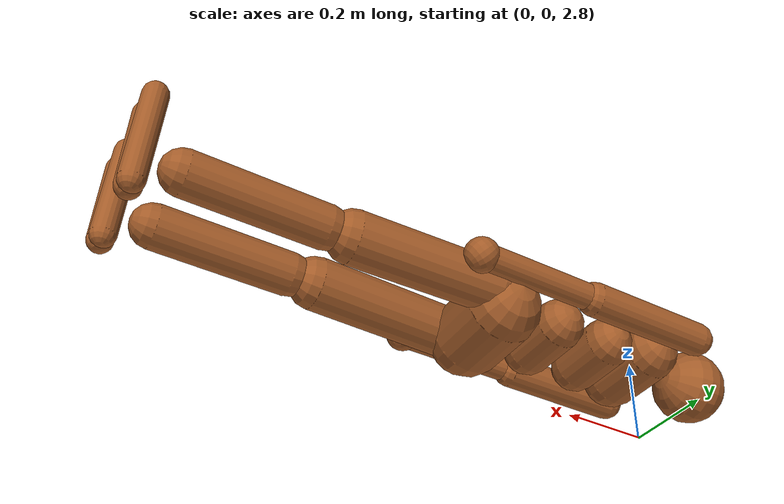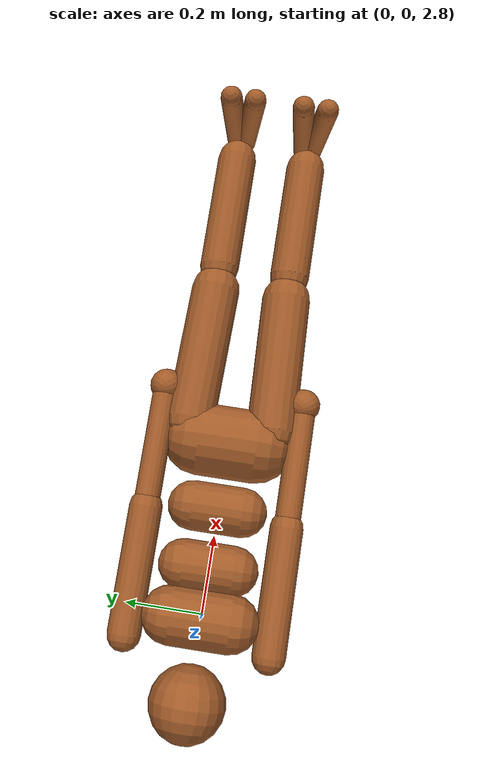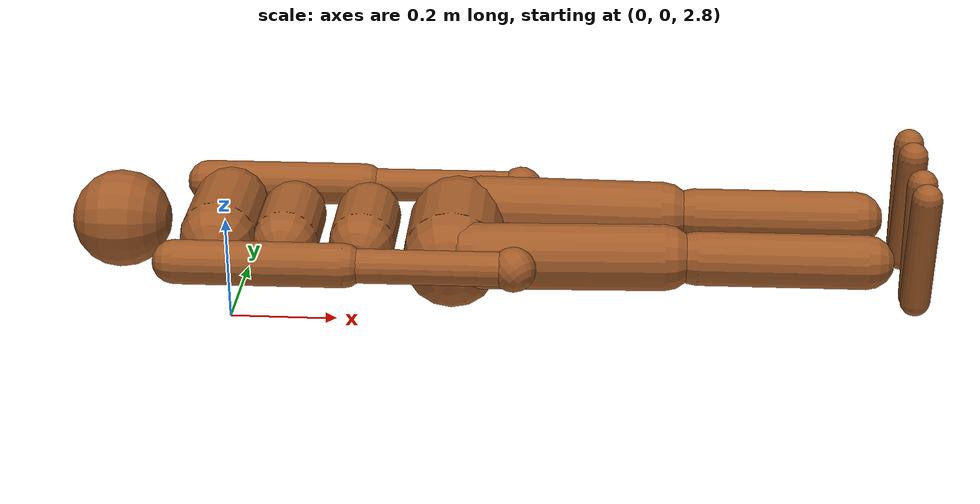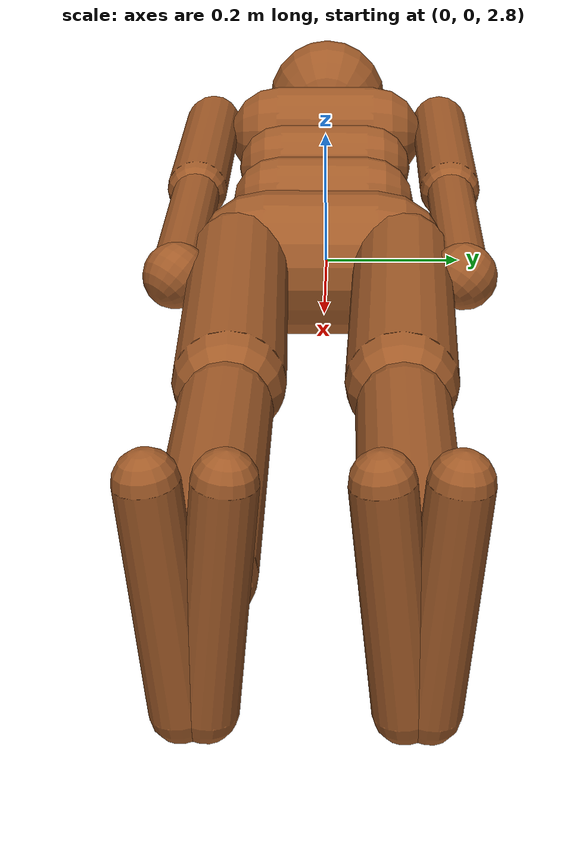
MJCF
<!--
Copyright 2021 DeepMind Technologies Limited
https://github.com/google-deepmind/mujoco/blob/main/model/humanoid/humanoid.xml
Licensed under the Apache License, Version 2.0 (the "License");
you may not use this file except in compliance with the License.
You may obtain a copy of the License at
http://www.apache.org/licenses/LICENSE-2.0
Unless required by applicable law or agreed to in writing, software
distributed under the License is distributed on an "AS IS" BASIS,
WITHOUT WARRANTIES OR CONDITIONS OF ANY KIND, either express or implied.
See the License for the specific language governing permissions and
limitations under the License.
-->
<mujoco model="Humanoid">
  <option
        gravity="0 0 0"
        timestep="0.005"
        integrator="implicitfast"
        density="1000"
        viscosity="0.0013"/>

  <visual>
    <map force="0.1" zfar="30"/>
    <rgba haze="0.15 0.25 0.35 1"/>
    <global offwidth="2560" offheight="1440"/>
  </visual>

  <statistic center="0 0 0.7"/>

  <asset>
    <texture type="skybox" builtin="gradient" rgb1=".3 .5 .7" rgb2="0 0 0" width="32" height="512"/>
    <texture name="body" type="cube" builtin="flat" mark="cross" width="128" height="128" rgb1="0.8 0.6 0.4" rgb2="0.8 0.6 0.4" markrgb="1 1 1"/>
    <material name="body" texture="body" texuniform="true" rgba="0.8 0.6 .4 1"/>
    <texture name="grid" type="2d" builtin="checker" width="512" height="512" rgb1=".1 .2 .3" rgb2=".2 .3 .4"/>
    <material name="grid" texture="grid" texrepeat="1 1" texuniform="true" reflectance=".2"/>
  </asset>

  <default>
    <motor ctrlrange="-1 1" ctrllimited="true"/>
    <joint damping="0.5"/>

    <default class="body">

      <!-- geoms -->
      <geom type="capsule"
        condim="1"
        friction=".01 .01 .01"
        solimp=".9 .99 .003"
        solref=".015 1"
        material="body"
        group="1"
        fluidshape="ellipsoid"
        />
      <default class="thigh">
        <geom size=".06"/>
      </default>
      <default class="shin">
        <geom fromto="0 0 0 0 0 -.3"  size=".049"/>
      </default>
      <default class="foot">
        <geom size=".027"/>
        <default class="foot1">
          <geom fromto="-.07 -.01 0 .14 -.03 0"/>
        </default>
        <default class="foot2">
          <geom fromto="-.07 .01 0 .14  .03 0"/>
        </default>
      </default>
      <default class="arm_upper">
        <geom size=".04"/>
      </default>
      <default class="arm_lower">
        <geom size=".031"/>
      </default>
      <default class="hand">
        <geom type="sphere" size=".04"/>
      </default>

      <!-- joints -->
      <joint type="hinge" damping=".2" stiffness="1" armature=".01" limited="true" solimplimit="0 .99 .01"/>
      <default class="joint_big">
        <joint damping="5" stiffness="10"/>
        <default class="hip_x">
          <joint range="-30 10"/>
        </default>
        <default class="hip_z">
          <joint range="-60 35"/>
        </default>
        <default class="hip_y">
          <joint axis="0 1 0" range="-150 20"/>
        </default>
        <default class="joint_big_stiff">
          <joint stiffness="20"/>
        </default>
      </default>
      <default class="knee">
        <joint pos="0 0 .02" axis="0 -1 0" range="-160 2"/>
      </default>
      <default class="ankle">
        <joint range="-50 50"/>
        <default class="ankle_y">
          <joint pos="0 0 .08" axis="0 1 0" stiffness="6"/>
        </default>
        <default class="ankle_x">
          <joint pos="0 0 .04" stiffness="3"/>
        </default>
      </default>
      <default class="shoulder">
        <joint range="-180 180"/>
      </default>
      <default class="elbow">
        <joint range="-100 50" stiffness="0"/>
      </default>
    </default>
  </default>

  <worldbody>
    <geom name="floor" size="0 0 .05" type="plane" material="grid" condim="3"/>
    <light name="spotlight" mode="targetbodycom" target="torso" diffuse=".8 .8 .8" specular="0.3 0.3 0.3" pos="0 -6 4" cutoff="30"/>
    <light name="top" pos="0 0 2" mode="trackcom"/>
    <geom name="water_surface"
              type="plane"
              size="10 10 0.01"
              pos="0 0 3.0"
              rgba="0 0.5 1 0.3"
              contype="0"
              conaffinity="0"/>
        <!-- Change this line -->
     <body name="torso" pos="0 0 3" quat="0.7071 0 -0.7071 0" childclass="body">

      <camera name="back" pos="-3 0 1" xyaxes="0 -1 0 1 0 2" mode="trackcom"/>
      <camera name="side" pos="0 -3 1" xyaxes="1 0 0 0 1 2" mode="trackcom"/>
      <freejoint name="root"/>
      <geom name="torso" fromto="0 -.07 0 0 .07 0" size=".07"/>
      <geom name="waist_upper" fromto="-.01 -.06 -.12 -.01 .06 -.12" size=".06"/>
      <body name="head" pos="0 0 .19">
        <geom name="head" type="sphere" size=".09"/>
        <camera name="egocentric" pos=".09 0 0" xyaxes="0 -1 0 .1 0 1" fovy="80"/>
      </body>
      <body name="waist_lower" pos="-.01 0 -.26">
        <geom name="waist_lower" fromto="0 -.06 0 0 .06 0" size=".06"/>
        <joint name="abdomen_z" pos="0 0 .065" axis="0 0 1" range="-45 45" class="joint_big_stiff"/>
        <joint name="abdomen_y" pos="0 0 .065" axis="0 1 0" range="-75 30" class="joint_big"/>
        <body name="pelvis" pos="0 0 -.165">
          <joint name="abdomen_x" pos="0 0 .1" axis="1 0 0" range="-35 35" class="joint_big"/>
          <geom name="butt" fromto="-.02 -.07 0 -.02 .07 0" size=".09"/>
          <body name="thigh_right" pos="0 -.1 -.04">
            <joint name="hip_x_right" axis="1 0 0" class="hip_x"/>
            <joint name="hip_z_right" axis="0 0 1" class="hip_z"/>
            <joint name="hip_y_right" class="hip_y"/>
            <geom name="thigh_right" fromto="0 0 0 0 .01 -.34" class="thigh"/>
            <body name="shin_right" pos="0 .01 -.4">
              <joint name="knee_right" class="knee"/>
              <geom name="shin_right" class="shin"/>
              <body name="foot_right" pos="0 0 -.39">
                <joint name="ankle_y_right" class="ankle_y"/>
                <joint name="ankle_x_right" class="ankle_x" axis="1 0 .5"/>
                <geom name="foot1_right" class="foot1"/>
                <geom name="foot2_right" class="foot2"/>
              </body>
            </body>
          </body>
          <body name="thigh_left" pos="0 .1 -.04">
            <joint name="hip_x_left" axis="-1 0 0" class="hip_x"/>
            <joint name="hip_z_left" axis="0 0 -1" class="hip_z"/>
            <joint name="hip_y_left" class="hip_y"/>
            <geom name="thigh_left" fromto="0 0 0 0 -.01 -.34" class="thigh"/>
            <body name="shin_left" pos="0 -.01 -.4">
              <joint name="knee_left" class="knee"/>
              <geom name="shin_left" fromto="0 0 0 0 0 -.3" class="shin"/>
              <body name="foot_left" pos="0 0 -.39">
                <joint name="ankle_y_left" class="ankle_y"/>
                <joint name="ankle_x_left" class="ankle_x" axis="-1 0 -.5"/>
                <geom name="foot1_left" class="foot1"/>
                <geom name="foot2_left" class="foot2"/>
              </body>
            </body>
          </body>
        </body>
      </body>

       <!-- ==================== RIGHT ARM ==================== -->
        <body name="upper_arm_right" pos="0 -.17 .06">
            <!-- Shoulder joint(s) are attached to the *origin* of this body -->
            <joint name="shoulder1_right" axis="0 0 1" class="shoulder"/>
            <joint name="shoulder2_right" axis="0 1 0" class="shoulder"/>
            <joint name="shoulder3_right" axis="1 0 0" class="shoulder"/>

            <!-- Upper‑arm geometry (drawn from the shoulder origin to the elbow) -->
            <geom name="upper_arm_right"
                  fromto="0 0 0 0 0 -0.3"
                  class="arm_upper"/>

            <body name="lower_arm_right" pos="0 0 -0.3">
                <!-- Elbow joint sits at the origin of this body (the elbow centre) -->
                <joint name="elbow_right" axis="0 1 0" class="elbow"/>

                <!-- Lower‑arm geometry (elbow → wrist) -->
                <geom name="lower_arm_right"
                      fromto="0 0 0 0 0 -0.3"
                      class="arm_lower"/>

                <body name="hand_right" pos="0 0 -0.3">
                    <!-- No joint needed for a simple hand; just a visual geom -->
                    <geom name="hand_right"
                          zaxis="1 1 1"
                          class="hand"/>
                </body>
            </body>
        </body>

        <!-- ==================== LEFT ARM ==================== -->
        <body name="upper_arm_left" pos="0 .17 .06">
            <joint name="shoulder1_left" axis="0 0 1" class="shoulder"/>
            <joint name="shoulder2_left" axis="0 1 0" class="shoulder"/>
            <joint name="shoulder3_left" axis="1 0 0" class="shoulder"/>

            <geom name="upper_arm_left"
                  fromto="0 0 0 0 0 -0.3"
                  class="arm_upper"/>

            <body name="lower_arm_left" pos="0 0 -0.3">
                <!-- Mirror the elbow axis of the right side for symmetry -->
                <joint name="elbow_left" axis="0 1 0" class="elbow"/>

                <geom name="lower_arm_left"
                      fromto="0 0 0 0 0 -0.3"
                      class="arm_lower"/>

                <body name="hand_left" pos="0 0 -0.3">
                    <geom name="hand_left"
                          zaxis="1 1 1"
                          class="hand"/>
                </body>
            </body>
        </body>
       </body>
</worldbody>

  <contact>
    <exclude body1="waist_lower" body2="thigh_right"/>
    <exclude body1="waist_lower" body2="thigh_left"/>
  </contact>

  <tendon>
    <fixed name="hamstring_right" limited="true" range="-0.3 2">
      <joint joint="hip_y_right" coef=".5"/>
      <joint joint="knee_right" coef="-.5"/>
    </fixed>
    <fixed name="hamstring_left" limited="true" range="-0.3 2">
      <joint joint="hip_y_left" coef=".5"/>
      <joint joint="knee_left" coef="-.5"/>
    </fixed>
  </tendon>

  <actuator>
    <motor name="abdomen_z"       gear="40"  joint="abdomen_z"/>
    <motor name="abdomen_y"       gear="40"  joint="abdomen_y"/>
    <motor name="abdomen_x"       gear="40"  joint="abdomen_x"/>
    <motor name="hip_x_right"     gear="40"  joint="hip_x_right"/>
    <motor name="hip_z_right"     gear="40"  joint="hip_z_right"/>
    <motor name="hip_y_right"     gear="120" joint="hip_y_right"/>
    <motor name="knee_right"      gear="80"  joint="knee_right"/>
    <motor name="ankle_y_right"   gear="20"  joint="ankle_y_right"/>
    <motor name="ankle_x_right"   gear="20"  joint="ankle_x_right"/>
    <motor name="hip_x_left"      gear="40"  joint="hip_x_left"/>
    <motor name="hip_z_left"      gear="40"  joint="hip_z_left"/>
    <motor name="hip_y_left"      gear="120" joint="hip_y_left"/>
    <motor name="knee_left"       gear="80"  joint="knee_left"/>
    <motor name="ankle_y_left"    gear="20"  joint="ankle_y_left"/>
    <motor name="ankle_x_left"    gear="20"  joint="ankle_x_left"/>
    <motor name="shoulder1_right" gear="20"  joint="shoulder1_right"/>
    <motor name="shoulder2_right" gear="20"  joint="shoulder2_right"/>
    <motor name="shoulder3_right" gear="20"  joint="shoulder3_right"/>
    <motor name="elbow_right"     gear="40"  joint="elbow_right"/>
    <motor name="shoulder1_left"  gear="20"  joint="shoulder1_left"/>
    <motor name="shoulder2_left"  gear="20"  joint="shoulder2_left"/>
    <motor name="shoulder3_left"  gear="20"  joint="shoulder3_left"/>
    <motor name="elbow_left"      gear="40"  joint="elbow_left"/>
  </actuator>
</mujoco>
